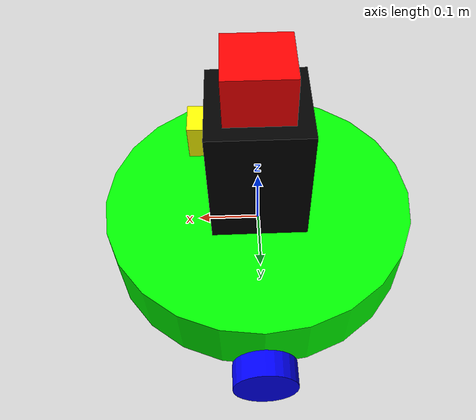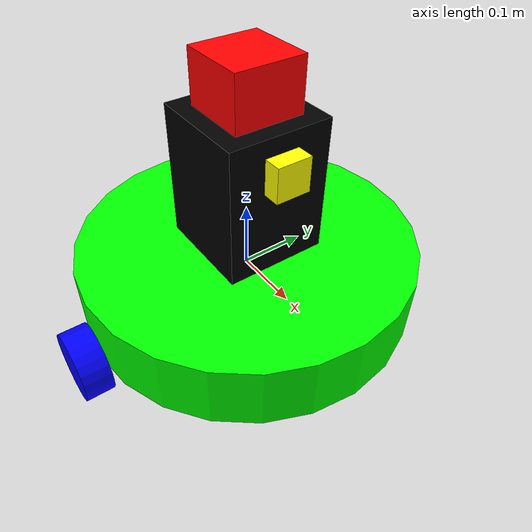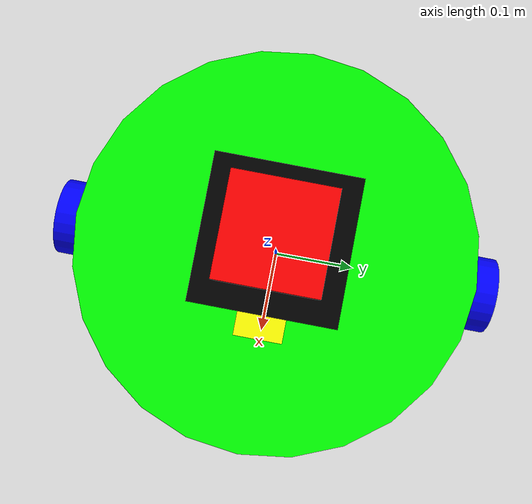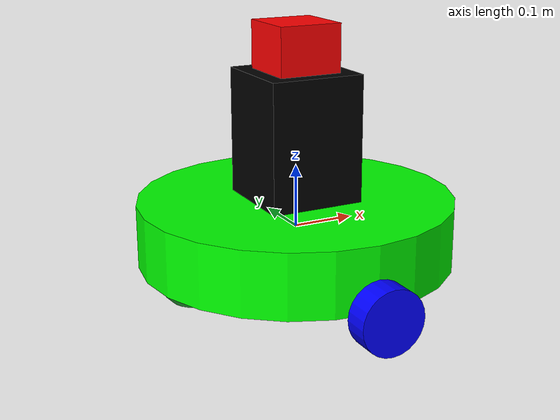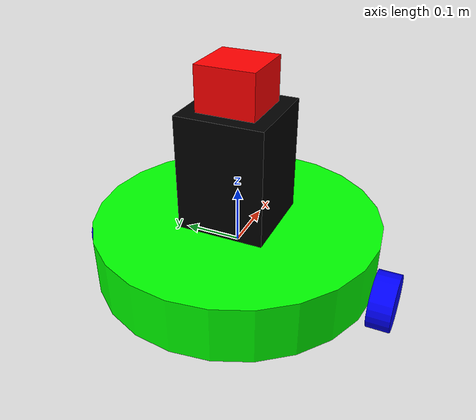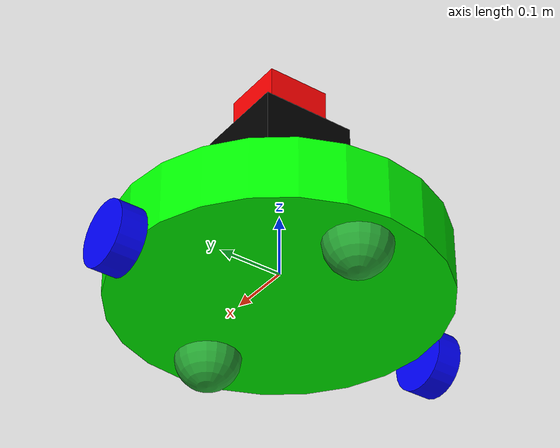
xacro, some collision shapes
<?xml version='1.0'?>

<robot name="panos_bot" xmlns:xacro="http://www.ros.org/wiki/xacro">
  <xacro:include filename="$(find panos_bot)/urdf/panos_bot.gazebo" />
  <link name="robot_footprint"></link>

  <joint name="robot_footprint_joint" type="fixed">
    <origin xyz="0 0 0" rpy="0 0 0" />
    <parent link="robot_footprint"/>
    <child link="chassis" />
  </joint>

  <link name='chassis'>
    <pose>0 0 0.1 0 0 0</pose>

    <inertial>
      <mass value="15.0"/>
      <origin xyz="0.0 0 0" rpy=" 0 0 0"/>
      <inertia
          ixx="0.1" ixy="0" ixz="0"
          iyy="0.1" iyz="0"
          izz="0.1"
      />
    </inertial>

    <collision name='collision'>
      <origin xyz="0 0 0" rpy=" 0 0 0"/>
      <geometry>
        <cylinder radius="0.25" length="0.1"/>
      </geometry>
    </collision>

    <visual name='chassis_visual'>
      <origin xyz="0 0 0" rpy=" 0 0 0"/>
      <geometry>
        <cylinder radius="0.25" length="0.1"/>
      </geometry>
      <material name="green">
        <color rgba="0 1 0 1"/>
      </material>
    </visual>
    <collision name='back_caster_collision'>
      <origin xyz="-0.18 0 -0.05" rpy=" 0 0 0"/>
      <geometry>
        <sphere radius="0.0499"/>
      </geometry>
    </collision>

    <visual name='back_caster_visual'>
      <origin xyz="-0.18 0 -0.05" rpy=" 0 0 0"/>
      <geometry>
        <sphere radius="0.05"/>
      </geometry>
    </visual>

    <collision name='front_caster_collision'>
      <origin xyz="0.18 0 -0.05" rpy=" 0 0 0"/>
      <geometry>
        <sphere radius="0.0499"/>
      </geometry>
    </collision>

    <visual name='front_caster_visual'>
      <origin xyz="0.18 0 -0.05" rpy=" 0 0 0"/>
      <geometry>
        <sphere radius="0.05"/>
      </geometry>
    </visual>
  </link>

  <!-- sensor base -->
  <link name='sensor_base'>
    <pose>0 0 0 0 0 0</pose>

    <inertial>
      <mass value="1.0"/>
      <origin xyz="0 0 0.125" rpy=" 0 0 0"/>
      <inertia
          ixx="0.1" ixy="0" ixz="0"
          iyy="0.1" iyz="0"
          izz="0.1"
      />
    </inertial>

    <collision name='sensor_base_collision'>
      <origin xyz="0 0 0.125" rpy=" 0 0 0"/>
      <geometry>
        <box size=".15 .15 .25"/>
      </geometry>
    </collision>

    <visual name='sensor_base_visual'>
      <origin xyz="0 0 0.125" rpy=" 0 0 0"/>
      <geometry>
        <box size=".15 .15 .25"/>
      </geometry>
      <material name="black">
        <color rgba="0 0 0 1"/>
      </material>
    </visual>
  </link>

  <!-- Left Wheel Link -->

  <link name="left_wheel">

    <inertial>
      <mass value="2.0"/>
      <origin xyz="0 0 0" rpy="0 1.5707 1.5707"/>
      <inertia
          ixx="0.1" ixy="0" ixz="0"
          iyy="0.1" iyz="0"
          izz="0.1"
      />
    </inertial>
    <visual>
      <geometry>
        <cylinder length="0.04" radius="0.05"/>
      </geometry>
      <origin xyz="0 0 0" rpy="0 1.5707 1.5707"/>
      <material name="blue">
        <color rgba="0 0 1 1"/>
      </material>
    </visual>
    <collision>
      <geometry>
        <cylinder length="0.04" radius="0.05"/>
      </geometry>
      <origin xyz="0 0 0" rpy="0 1.5707 1.5707"/>
    </collision>
  </link>

  <!-- Right Wheel Link -->

  <link name="right_wheel">

    <inertial>
      <mass value="2.0"/>
      <origin xyz="0 0 0" rpy="0 1.5707 1.5707"/>
      <inertia
          ixx="0.1" ixy="0" ixz="0"
          iyy="0.1" iyz="0"
          izz="0.1"
      />
    </inertial>
    <visual>
      <geometry>
        <cylinder length="0.04" radius="0.05"/>
      </geometry>
      <origin xyz="0 0 0" rpy="0 1.5707 1.5707"/>
      <material name="blue">
        <color rgba="0 0 1 1"/>
      </material>
    </visual>
    <collision>
      <geometry>
        <cylinder length="0.04" radius="0.05"/>
      </geometry>
      <origin xyz="0 0 0" rpy="0 1.5707 1.5707"/>
    </collision>
  </link>

  <!-- Camera Link -->

  <link name="camera">

    <inertial>
      <mass value="0.1"/>
      <origin xyz="0 0 0" rpy="0 0 0"/>
      <inertia
          ixx="1e-6" ixy="0" ixz="0"
          iyy="1e-6" iyz="0"
          izz="1e-6"
      />
    </inertial>
    <visual>
      <geometry>
        <box size="0.05 0.05 0.05"/>
      </geometry>
      <origin xyz="0 0 0" rpy="0 0 0"/>
      <material name="yellow">
        <color rgba="1 1 0 1"/>
      </material>
    </visual>
    <collision>
      <geometry>
        <box size="0.05 0.05 0.05"/>
      </geometry>
      <origin xyz="0 0 0" rpy="0 0 0"/>
    </collision>
  </link>

  <!-- Hokuyo Link -->

  <link name="hokuyo">

    <inertial>
      <mass value="0.1"/>
      <origin xyz="0 0 0" rpy="0 0 0"/>
      <inertia
          ixx="1e-6" ixy="0" ixz="0"
          iyy="1e-6" iyz="0"
          izz="1e-6"
      />
    </inertial>
    <visual>
      <geometry>
        <mesh filename="package://udacity_bot/meshes/hokuyo.dae"/>
      </geometry>
      <origin xyz="0 0 0" rpy="0 0 0"/>
      <material name="red">
        <color rgba="1 0 0 1"/>
      </material>
    </visual>
    <collision>
      <geometry>
        <box size="0.1 0.1 0.1"/>
      </geometry>
      <origin xyz="0 0 0" rpy="0 0 0"/>
    </collision>
  </link>

  <!-- Joints -->

  <joint type="continuous" name="left_wheel_hinge">
    <origin xyz="0 0.27 -0.05" rpy="0 0 0"/>
    <child link="left_wheel"/>
    <parent link="chassis"/>
    <axis xyz="0 1 0" rpy="0 0 0"/>
    <limit effort="10000" velocity="1000"/>
    <joint_properties damping="1.0" friction="1.0"/>
  </joint>

  <joint type="continuous" name="right_wheel_hinge">
    <origin xyz="0 -0.27 -0.05" rpy="0 0 0"/>
    <child link="right_wheel"/>
    <parent link="chassis"/>
    <axis xyz="0 1 0" rpy="0 0 0"/>
    <limit effort="10000" velocity="1000"/>
    <joint_properties damping="1.0" friction="1.0"/>
  </joint>

  <joint type="fixed" name="camera_joint">
    <origin xyz="0.075 0 0.2" rpy="0 0 0"/>
    <child link="camera"/>
    <parent link="sensor_base"/>
  </joint>

  <joint type="fixed" name="hokuyo_joint">
    <origin xyz="0 0 0.275" rpy="0 0 0"/>
    <child link="hokuyo"/>
    <parent link="sensor_base"/>
  </joint>

  <joint type="fixed" name="sensor_base_joint">
    <origin xyz="0 0 0" rpy="0 0 0"/>
    <child link="sensor_base"/>
    <parent link="chassis"/>
  </joint>

</robot>
